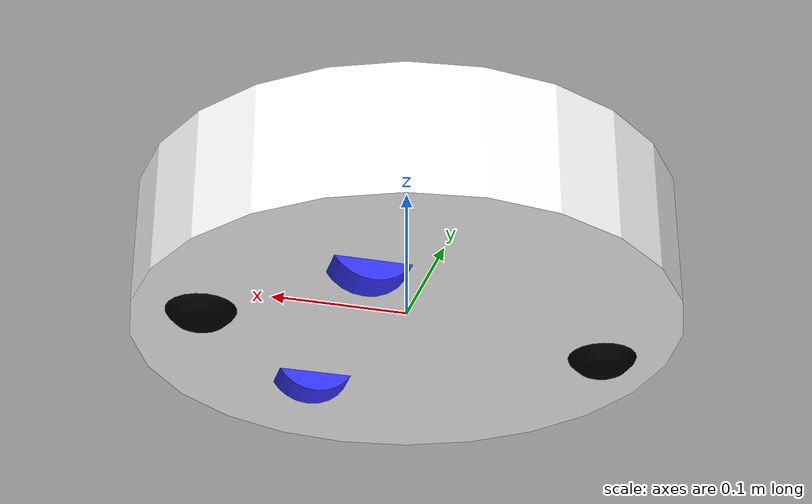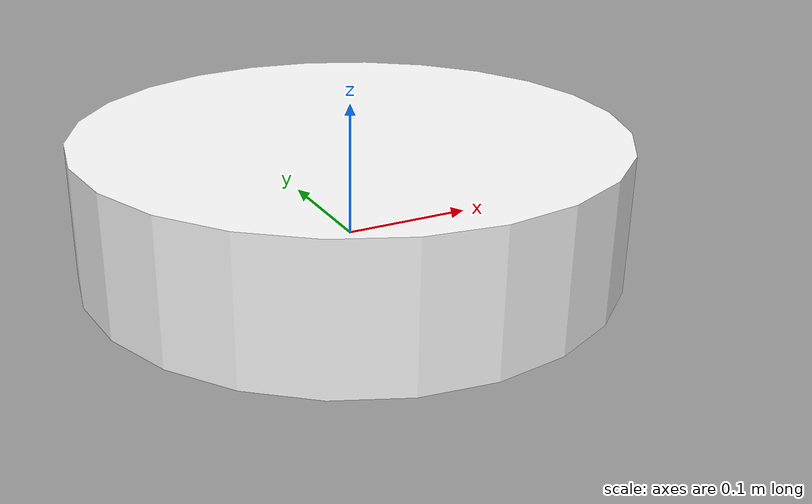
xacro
<?xml version="1.0"?>
<robot xmlns:xacro="http://www.ros.org/wiki/xacro" >

    <xacro:include filename="inertial_macros.xacro"/>

    <material name="white">
        <color rgba="1 1 1 1" />
    </material>

    <material name="orange">
        <color rgba="1 0.3 0.1 1"/>
    </material>

    <material name="blue">
        <color rgba="0.2 0.2 1 1"/>
    </material>

    <material name="black">
        <color rgba="0 0 0 1"/>
    </material>

        <!-- BASE FOOTPRINT -->]
    <link name="base_footprint"></link>

    <joint name="base_footprint_joint" type="fixed">
        <parent link="base_footprint"/>
        <child link="base_link"/>
        <origin xyz="0 0 0" rpy="0 0 0"/>
    </joint>

    <!-- BASE LINK -->

    <link name="base_link">
        <visual>
            <origin xyz="0 0 0.0325"/>
            <geometry>
                <cylinder radius="0.2" length="0.1"/>
            </geometry>
            <material name="white"/>
        </visual>
        <collision>
            <origin xyz="0 0 0.0325"/>
            <geometry>
                <cylinder radius="0.2" length="0.1"/>
            </geometry>
        </collision>
        <xacro:inertial_cylinder mass="0.5" length="0.1" radius="0.2">
            <origin xyz="0 0 0.0325" rpy="0 0 0"/>
        </xacro:inertial_cylinder>

        <visual name="front_caster_wheel_visual">
            <origin xyz="0.15 0 -0.0025" rpy="0 0 0"/>
            <geometry>
                <sphere radius="0.03"/>
            </geometry>
            <material name="black"/>
        </visual>

        <collision name="front_caster_wheel_collision">
            <origin xyz="0.15 0 -0.0025" rpy="0 0 0"/>
            <geometry>
                <sphere radius="0.03"/>
            </geometry>
        </collision>

        <visual name="rear_caster_wheel_visual">
            <origin xyz="-0.15 0 -0.0025" rpy="0 0 0"/>
            <geometry>
                <sphere radius="0.03"/>
            </geometry>
            <material name="black"/>
        </visual>

        <collision name="rear_caster_wheel_collision">
            <origin xyz="-0.15 0 -0.0025" rpy="0 0 0"/>
            <geometry>
                <sphere radius="0.03"/>
            </geometry>
        </collision>
    </link>

    <!-- LEFT WHEEL LINK -->

    <joint name="left_wheel_joint" type="continuous">
        <parent link="base_link"/>
        <child link="left_wheel"/>
        <origin xyz="0.05 0.09 0" rpy="-${pi/2} 0 0" />
        <axis xyz="0 0 1"/>
        <limit effort="100" velocity="20.0"/>
        <dynamics damping="2.0" friction="3.0"/>
    </joint>

    <link name="left_wheel">
        <visual>
            <geometry>
                <cylinder radius="0.0325" length="0.025"/>
            </geometry>
            <material name="blue"/>
        </visual>
        <collision>
            <geometry>
                <cylinder radius="0.0325" length="0.025"/>
            </geometry>
        </collision>
        <xacro:inertial_cylinder mass="0.1" length="0.025" radius="0.0325">
            <origin xyz="0 0 0" rpy="0 0 0"/>
        </xacro:inertial_cylinder>
    </link>

    <!-- RIGHT WHEEL LINK -->

    <joint name="right_wheel_joint" type="continuous">
        <parent link="base_link"/>
        <child link="right_wheel"/>
        <origin xyz="0.05 -0.09 0" rpy="${pi/2} 0 0" />
        <axis xyz="0 0 -1"/>
        <limit effort="100" velocity="20.0"/>
        <dynamics damping="2.0" friction="3.0"/>
    </joint>

    <link name="right_wheel">
        <visual>
            <geometry>
                <cylinder radius="0.0325" length="0.025"/>
            </geometry>
            <material name="blue"/>
        </visual>
        <collision>
            <geometry>
                <cylinder radius="0.0325" length="0.025"/>
            </geometry>
        </collision>
        <xacro:inertial_cylinder mass="0.1" length="0.025" radius="0.0325">
            <origin xyz="0 0 0" rpy="0 0 0"/>
        </xacro:inertial_cylinder>
    </link>

</robot>
